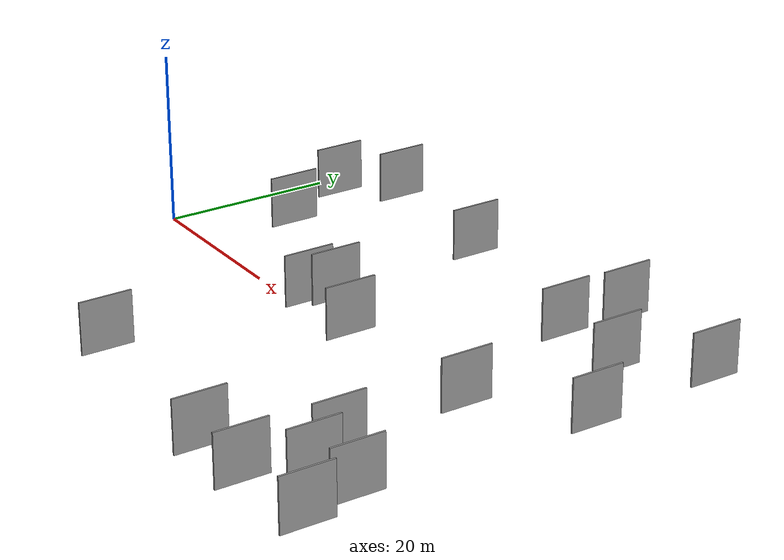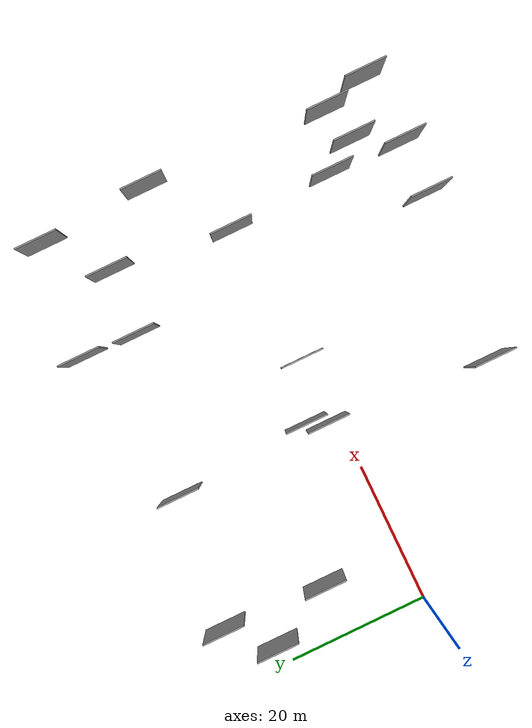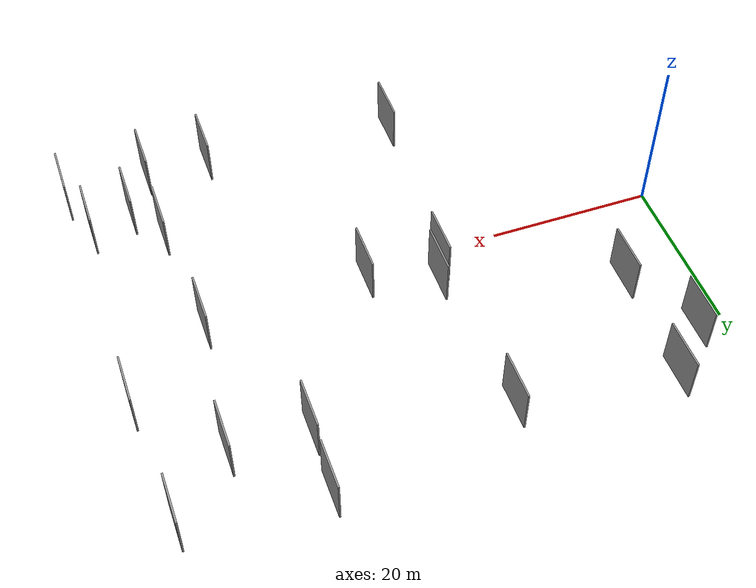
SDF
<sdf version="1.6">
 <world name="default">
  <scene>
   <sky><clouds><speed>12</speed></clouds></sky>
   <ambient>0.4 0.4 0.4 1</ambient>
   <background>0.7 0.7 0.7 1</background>
   <shadows>1</shadows>
  </scene>
  <gravity>0 0 -9.8066</gravity>
  <magnetic_field>6e-06 2.3e-05 -4.2e-05</magnetic_field>
  <physics default="0" name="default_physics" type="ode">
   <ode>
    <solver>
     <type>quick</type>
     <iters>10</iters>
     <sor>1.0</sor>
     <use_dynamic_moi_rescaling>0</use_dynamic_moi_rescaling>
    </solver>
    <constraints>
     <cfm>0</cfm>
     <erp>0.2</erp>
     <contact_max_correcting_vel>100</contact_max_correcting_vel>
     <contact_surface_layer>0.001</contact_surface_layer>
    </constraints>
   </ode>
   <max_step_size>0.004</max_step_size>
   <real_time_factor>1</real_time_factor>
   <real_time_update_rate>250</real_time_update_rate>
  </physics>
  <light name="sun" type="directional">
   <pose>0 0 10 0 0 0</pose>
   <diffuse>0.8 0.8 0.8 1</diffuse>
   <specular>0.2 0.2 0.2 1</specular>
   <attenuation>
    <range>1000</range>
    <constant>0.9</constant>
    <linear>0.01</linear>
    <quadratic>0.001</quadratic>
   </attenuation>
   <direction>-0.5 0.1 -0.9</direction>
  </light>
  <model name="grey_wall_1">
   <static>1</static>
   <pose>67.2538 10.1182 0.0 0.000000 0.000000 1.570796</pose>
   <link name="link">
    <pose>0 0 3.00 0 0 0</pose>
    <collision name="collision"><geometry><box><size>6.00 0.2 6.00</size></box></geometry></collision>
    <visual name="visual">
     <cast_shadows>0</cast_shadows>
     <geometry><box><size>6.00 0.2 6.00</size></box></geometry>
     <material>
      <script>
       <uri>model://grey_wall/materials/scripts</uri>
       <uri>model://grey_wall/materials/textures</uri>
       <name>vrc/grey_wall</name>
      </script>
     </material>
    </visual>
   </link>
  </model>
  <model name="grey_wall_2">
   <static>1</static>
   <pose>56.9212 2.0275 0.0 0.000000 0.000000 1.570796</pose>
   <link name="link">
    <pose>0 0 3.00 0 0 0</pose>
    <collision name="collision"><geometry><box><size>6.00 0.2 6.00</size></box></geometry></collision>
    <visual name="visual">
     <cast_shadows>0</cast_shadows>
     <geometry><box><size>6.00 0.2 6.00</size></box></geometry>
     <material>
      <script>
       <uri>model://grey_wall/materials/scripts</uri>
       <uri>model://grey_wall/materials/textures</uri>
       <name>vrc/grey_wall</name>
      </script>
     </material>
    </visual>
   </link>
  </model>
  <model name="grey_wall_3">
   <static>1</static>
   <pose>58.0375 -13.3037 0.0 0.000000 0.000000 1.570796</pose>
   <link name="link">
    <pose>0 0 3.00 0 0 0</pose>
    <collision name="collision"><geometry><box><size>6.00 0.2 6.00</size></box></geometry></collision>
    <visual name="visual">
     <cast_shadows>0</cast_shadows>
     <geometry><box><size>6.00 0.2 6.00</size></box></geometry>
     <material>
      <script>
       <uri>model://grey_wall/materials/scripts</uri>
       <uri>model://grey_wall/materials/textures</uri>
       <name>vrc/grey_wall</name>
      </script>
     </material>
    </visual>
   </link>
  </model>
  <model name="grey_wall_4">
   <static>1</static>
   <pose>49.6122 19.6578 0.0 0.000000 0.000000 1.570796</pose>
   <link name="link">
    <pose>0 0 3.00 0 0 0</pose>
    <collision name="collision"><geometry><box><size>6.00 0.2 6.00</size></box></geometry></collision>
    <visual name="visual">
     <cast_shadows>0</cast_shadows>
     <geometry><box><size>6.00 0.2 6.00</size></box></geometry>
     <material>
      <script>
       <uri>model://grey_wall/materials/scripts</uri>
       <uri>model://grey_wall/materials/textures</uri>
       <name>vrc/grey_wall</name>
      </script>
     </material>
    </visual>
   </link>
  </model>
  <model name="grey_wall_5">
   <static>1</static>
   <pose>8.8393 26.0841 0.0 0.000000 0.000000 1.570796</pose>
   <link name="link">
    <pose>0 0 3.00 0 0 0</pose>
    <collision name="collision"><geometry><box><size>6.00 0.2 6.00</size></box></geometry></collision>
    <visual name="visual">
     <cast_shadows>0</cast_shadows>
     <geometry><box><size>6.00 0.2 6.00</size></box></geometry>
     <material>
      <script>
       <uri>model://grey_wall/materials/scripts</uri>
       <uri>model://grey_wall/materials/textures</uri>
       <name>vrc/grey_wall</name>
      </script>
     </material>
    </visual>
   </link>
  </model>
  <model name="grey_wall_6">
   <static>1</static>
   <pose>49.9615 -23.7700 0.0 0.000000 0.000000 1.570796</pose>
   <link name="link">
    <pose>0 0 3.00 0 0 0</pose>
    <collision name="collision"><geometry><box><size>6.00 0.2 6.00</size></box></geometry></collision>
    <visual name="visual">
     <cast_shadows>0</cast_shadows>
     <geometry><box><size>6.00 0.2 6.00</size></box></geometry>
     <material>
      <script>
       <uri>model://grey_wall/materials/scripts</uri>
       <uri>model://grey_wall/materials/textures</uri>
       <name>vrc/grey_wall</name>
      </script>
     </material>
    </visual>
   </link>
  </model>
  <model name="grey_wall_7">
   <static>1</static>
   <pose>66.1703 25.8979 0.0 0.000000 0.000000 1.570796</pose>
   <link name="link">
    <pose>0 0 3.00 0 0 0</pose>
    <collision name="collision"><geometry><box><size>6.00 0.2 6.00</size></box></geometry></collision>
    <visual name="visual">
     <cast_shadows>0</cast_shadows>
     <geometry><box><size>6.00 0.2 6.00</size></box></geometry>
     <material>
      <script>
       <uri>model://grey_wall/materials/scripts</uri>
       <uri>model://grey_wall/materials/textures</uri>
       <name>vrc/grey_wall</name>
      </script>
     </material>
    </visual>
   </link>
  </model>
  <model name="grey_wall_8">
   <static>1</static>
   <pose>29.0464 4.3088 0.0 0.000000 0.000000 1.570796</pose>
   <link name="link">
    <pose>0 0 3.00 0 0 0</pose>
    <collision name="collision"><geometry><box><size>6.00 0.2 6.00</size></box></geometry></collision>
    <visual name="visual">
     <cast_shadows>0</cast_shadows>
     <geometry><box><size>6.00 0.2 6.00</size></box></geometry>
     <material>
      <script>
       <uri>model://grey_wall/materials/scripts</uri>
       <uri>model://grey_wall/materials/textures</uri>
       <name>vrc/grey_wall</name>
      </script>
     </material>
    </visual>
   </link>
  </model>
  <model name="grey_wall_9">
   <static>1</static>
   <pose>57.7498 -23.7136 0.0 0.000000 0.000000 1.570796</pose>
   <link name="link">
    <pose>0 0 3.00 0 0 0</pose>
    <collision name="collision"><geometry><box><size>6.00 0.2 6.00</size></box></geometry></collision>
    <visual name="visual">
     <cast_shadows>0</cast_shadows>
     <geometry><box><size>6.00 0.2 6.00</size></box></geometry>
     <material>
      <script>
       <uri>model://grey_wall/materials/scripts</uri>
       <uri>model://grey_wall/materials/textures</uri>
       <name>vrc/grey_wall</name>
      </script>
     </material>
    </visual>
   </link>
  </model>
  <model name="grey_wall_10">
   <static>1</static>
   <pose>60.9760 -17.8432 0.0 0.000000 0.000000 1.570796</pose>
   <link name="link">
    <pose>0 0 3.00 0 0 0</pose>
    <collision name="collision"><geometry><box><size>6.00 0.2 6.00</size></box></geometry></collision>
    <visual name="visual">
     <cast_shadows>0</cast_shadows>
     <geometry><box><size>6.00 0.2 6.00</size></box></geometry>
     <material>
      <script>
       <uri>model://grey_wall/materials/scripts</uri>
       <uri>model://grey_wall/materials/textures</uri>
       <name>vrc/grey_wall</name>
      </script>
     </material>
    </visual>
   </link>
  </model>
  <model name="grey_wall_11">
   <static>1</static>
   <pose>58.9232 19.0980 0.0 0.000000 0.000000 1.570796</pose>
   <link name="link">
    <pose>0 0 3.00 0 0 0</pose>
    <collision name="collision"><geometry><box><size>6.00 0.2 6.00</size></box></geometry></collision>
    <visual name="visual">
     <cast_shadows>0</cast_shadows>
     <geometry><box><size>6.00 0.2 6.00</size></box></geometry>
     <material>
      <script>
       <uri>model://grey_wall/materials/scripts</uri>
       <uri>model://grey_wall/materials/textures</uri>
       <name>vrc/grey_wall</name>
      </script>
     </material>
    </visual>
   </link>
  </model>
  <model name="grey_wall_12">
   <static>1</static>
   <pose>37.0774 1.1211 0.0 0.000000 0.000000 1.570796</pose>
   <link name="link">
    <pose>0 0 3.00 0 0 0</pose>
    <collision name="collision"><geometry><box><size>6.00 0.2 6.00</size></box></geometry></collision>
    <visual name="visual">
     <cast_shadows>0</cast_shadows>
     <geometry><box><size>6.00 0.2 6.00</size></box></geometry>
     <material>
      <script>
       <uri>model://grey_wall/materials/scripts</uri>
       <uri>model://grey_wall/materials/textures</uri>
       <name>vrc/grey_wall</name>
      </script>
     </material>
    </visual>
   </link>
  </model>
  <model name="grey_wall_13">
   <static>1</static>
   <pose>27.5820 23.7217 0.0 0.000000 0.000000 1.570796</pose>
   <link name="link">
    <pose>0 0 3.00 0 0 0</pose>
    <collision name="collision"><geometry><box><size>6.00 0.2 6.00</size></box></geometry></collision>
    <visual name="visual">
     <cast_shadows>0</cast_shadows>
     <geometry><box><size>6.00 0.2 6.00</size></box></geometry>
     <material>
      <script>
       <uri>model://grey_wall/materials/scripts</uri>
       <uri>model://grey_wall/materials/textures</uri>
       <name>vrc/grey_wall</name>
      </script>
     </material>
    </visual>
   </link>
  </model>
  <model name="grey_wall_14">
   <static>1</static>
   <pose>49.9153 27.4808 0.0 0.000000 0.000000 1.570796</pose>
   <link name="link">
    <pose>0 0 3.00 0 0 0</pose>
    <collision name="collision"><geometry><box><size>6.00 0.2 6.00</size></box></geometry></collision>
    <visual name="visual">
     <cast_shadows>0</cast_shadows>
     <geometry><box><size>6.00 0.2 6.00</size></box></geometry>
     <material>
      <script>
       <uri>model://grey_wall/materials/scripts</uri>
       <uri>model://grey_wall/materials/textures</uri>
       <name>vrc/grey_wall</name>
      </script>
     </material>
    </visual>
   </link>
  </model>
  <model name="grey_wall_15">
   <static>1</static>
   <pose>67.9207 -22.8072 0.0 0.000000 0.000000 1.570796</pose>
   <link name="link">
    <pose>0 0 3.00 0 0 0</pose>
    <collision name="collision"><geometry><box><size>6.00 0.2 6.00</size></box></geometry></collision>
    <visual name="visual">
     <cast_shadows>0</cast_shadows>
     <geometry><box><size>6.00 0.2 6.00</size></box></geometry>
     <material>
      <script>
       <uri>model://grey_wall/materials/scripts</uri>
       <uri>model://grey_wall/materials/textures</uri>
       <name>vrc/grey_wall</name>
      </script>
     </material>
    </visual>
   </link>
  </model>
  <model name="grey_wall_16">
   <static>1</static>
   <pose>27.8299 1.6892 0.0 0.000000 0.000000 1.570796</pose>
   <link name="link">
    <pose>0 0 3.00 0 0 0</pose>
    <collision name="collision"><geometry><box><size>6.00 0.2 6.00</size></box></geometry></collision>
    <visual name="visual">
     <cast_shadows>0</cast_shadows>
     <geometry><box><size>6.00 0.2 6.00</size></box></geometry>
     <material>
      <script>
       <uri>model://grey_wall/materials/scripts</uri>
       <uri>model://grey_wall/materials/textures</uri>
       <name>vrc/grey_wall</name>
      </script>
     </material>
    </visual>
   </link>
  </model>
  <model name="grey_wall_17">
   <static>1</static>
   <pose>8.3997 11.4411 0.0 0.000000 0.000000 1.570796</pose>
   <link name="link">
    <pose>0 0 3.00 0 0 0</pose>
    <collision name="collision"><geometry><box><size>6.00 0.2 6.00</size></box></geometry></collision>
    <visual name="visual">
     <cast_shadows>0</cast_shadows>
     <geometry><box><size>6.00 0.2 6.00</size></box></geometry>
     <material>
      <script>
       <uri>model://grey_wall/materials/scripts</uri>
       <uri>model://grey_wall/materials/textures</uri>
       <name>vrc/grey_wall</name>
      </script>
     </material>
    </visual>
   </link>
  </model>
  <model name="grey_wall_18">
   <static>1</static>
   <pose>26.2471 -21.7116 0.0 0.000000 0.000000 1.570796</pose>
   <link name="link">
    <pose>0 0 3.00 0 0 0</pose>
    <collision name="collision"><geometry><box><size>6.00 0.2 6.00</size></box></geometry></collision>
    <visual name="visual">
     <cast_shadows>0</cast_shadows>
     <geometry><box><size>6.00 0.2 6.00</size></box></geometry>
     <material>
      <script>
       <uri>model://grey_wall/materials/scripts</uri>
       <uri>model://grey_wall/materials/textures</uri>
       <name>vrc/grey_wall</name>
      </script>
     </material>
    </visual>
   </link>
  </model>
  <model name="grey_wall_19">
   <static>1</static>
   <pose>66.1073 -16.3886 0.0 0.000000 0.000000 1.570796</pose>
   <link name="link">
    <pose>0 0 3.00 0 0 0</pose>
    <collision name="collision"><geometry><box><size>6.00 0.2 6.00</size></box></geometry></collision>
    <visual name="visual">
     <cast_shadows>0</cast_shadows>
     <geometry><box><size>6.00 0.2 6.00</size></box></geometry>
     <material>
      <script>
       <uri>model://grey_wall/materials/scripts</uri>
       <uri>model://grey_wall/materials/textures</uri>
       <name>vrc/grey_wall</name>
      </script>
     </material>
    </visual>
   </link>
  </model>
  <model name="grey_wall_20">
   <static>1</static>
   <pose>3.6569 20.6395 0.0 0.000000 0.000000 1.570796</pose>
   <link name="link">
    <pose>0 0 3.00 0 0 0</pose>
    <collision name="collision"><geometry><box><size>6.00 0.2 6.00</size></box></geometry></collision>
    <visual name="visual">
     <cast_shadows>0</cast_shadows>
     <geometry><box><size>6.00 0.2 6.00</size></box></geometry>
     <material>
      <script>
       <uri>model://grey_wall/materials/scripts</uri>
       <uri>model://grey_wall/materials/textures</uri>
       <name>vrc/grey_wall</name>
      </script>
     </material>
    </visual>
   </link>
  </model>
 </world>
</sdf>
